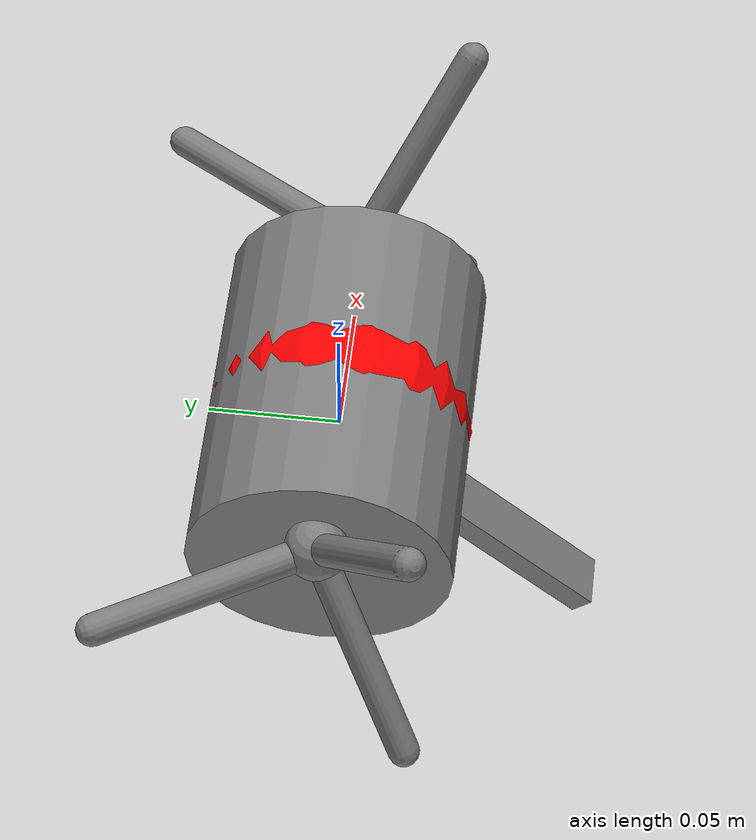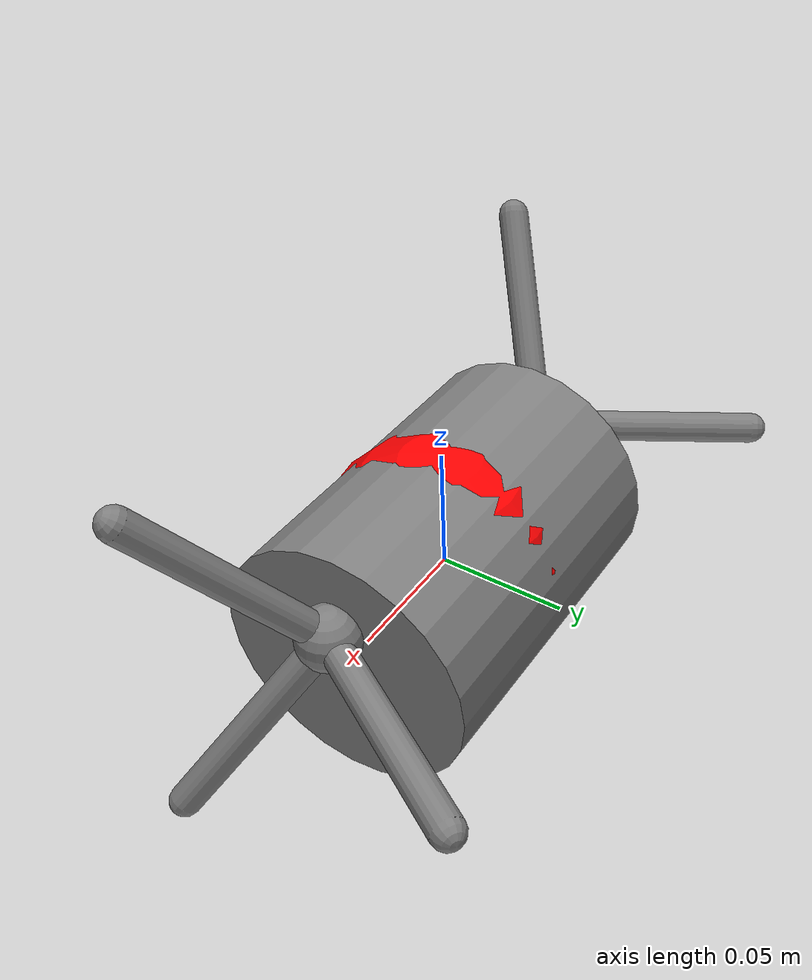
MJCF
<mujoco model="2wheel_rover_tripod_eccentric">
  <compiler angle="radian"/>

  <worldbody>
    <body name="2wheel_rover">
      <joint name="body_free_joint" type="free" damping="1"/>

      <body name="main_body">
        <geom name="main_body_geom" group="2" type="cylinder" fromto="0.065 0 0 -0.065 0 0" size="0.05" mass="0.5"/>
      </body>

      <site name="marker" pos="0 -0.0005 0.001" size="0.05" type="sphere" rgba="1 0 0 1"/>
      <site name="IMU" pos="0 0 0" size="0.01" rgba="1 0 1 1"/>
      <site name="GYRO" pos="0 0 0" size="0.01" rgba="0 1 1 1"/>
      <site name="VELOCITY" pos="0 0 0" size="0.01" rgba="0 1 1 1"/>

      <body name="r_wheel" pos="0.07 0 0">
        <joint name="r_wheel_joint" type="hinge" axis="-1 0 0" damping="0.3" frictionloss="0.01"/>
        <geom name="r_wheel_hub" group="2" type="sphere" size="0.012" pos="0 0 0.02" mass="0.02" friction="1 0.1 0.1"/>
        <geom name="r_wheel_rod0" group="2" type="capsule" size="0.006" fromto="0 0 0.02  0.04330 0.075 0.02" mass="0.0767" friction="1 0.1 0.1"/>
        <geom name="r_wheel_rod1" group="2" type="capsule" size="0.006" fromto="0 0 0.02  0.04330 -0.0375 0.08495" mass="0.0767" friction="1 0.1 0.1"/>
        <geom name="r_wheel_rod2" group="2" type="capsule" size="0.006" fromto="0 0 0.02  0.04330 -0.0375 -0.04495" mass="0.0767" friction="1 0.1 0.1"/>
      </body>
      <body name="l_wheel" pos="-0.07 0 0">
        <joint name="l_wheel_joint" type="hinge" axis="-1 0 0" damping="0.3" frictionloss="0.01"/>
        <geom name="l_wheel_hub" group="2" type="sphere" size="0.012" pos="0 0 0.02" mass="0.02" friction="1 0.1 0.1"/>
        <geom name="l_wheel_rod0" group="2" type="capsule" size="0.006" fromto="0 0 0.02  -0.04330 0.075 0.02" mass="0.0767" friction="1 0.1 0.1"/>
        <geom name="l_wheel_rod1" group="2" type="capsule" size="0.006" fromto="0 0 0.02  -0.04330 -0.0375 0.08495" mass="0.0767" friction="1 0.1 0.1"/>
        <geom name="l_wheel_rod2" group="2" type="capsule" size="0.006" fromto="0 0 0.02  -0.04330 -0.0375 -0.04495" mass="0.0767" friction="1 0.1 0.1"/>
      </body>

      <!-- trailing skid: keeps the rover from pitching over since it only has left/right wheels -->
      <geom name="stabilizer" group="2" type="box" size="0.01 0.07 0.005" pos="0 -0.049497 -0.049497" euler="0.7853981634 0 0" mass="0.2"/>
    </body>
  </worldbody>

  <actuator>
    <intvelocity name="r_motor" joint="r_wheel_joint" gear="1" kp="1" actrange="-inf inf" ctrllimited="true" ctrlrange="-5.2359877 5.2359877" forcelimited="true" forcerange="-2.94 2.94"/>
    <intvelocity name="l_motor" joint="l_wheel_joint" gear="1" kp="1" actrange="-inf inf" ctrllimited="true" ctrlrange="-5.2359877 5.2359877" forcelimited="true" forcerange="-2.94 2.94"/>
  </actuator>

  <sensor>
    <accelerometer name="accelerometer" site="IMU"/>
    <gyro name="gyro" site="GYRO"/>
    <velocimeter name="velocimeter" site="VELOCITY"/>
  </sensor>
</mujoco>
